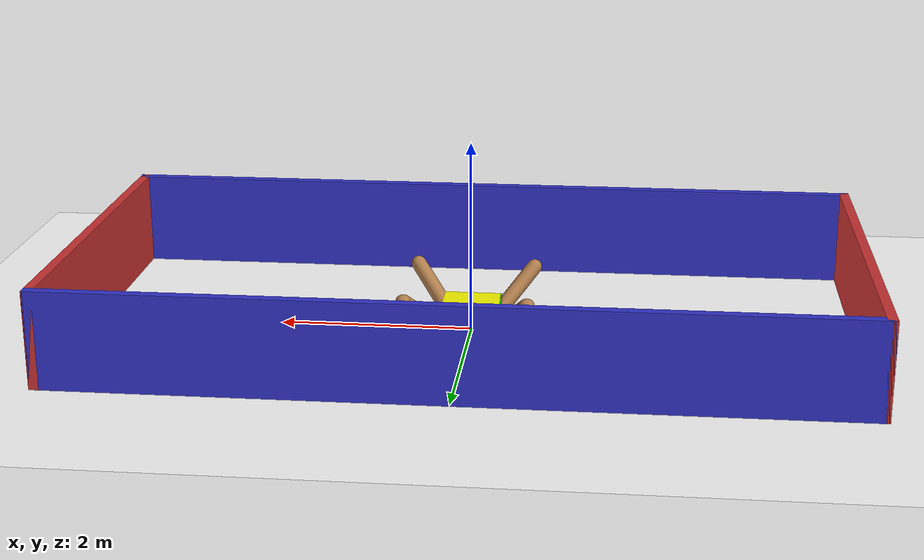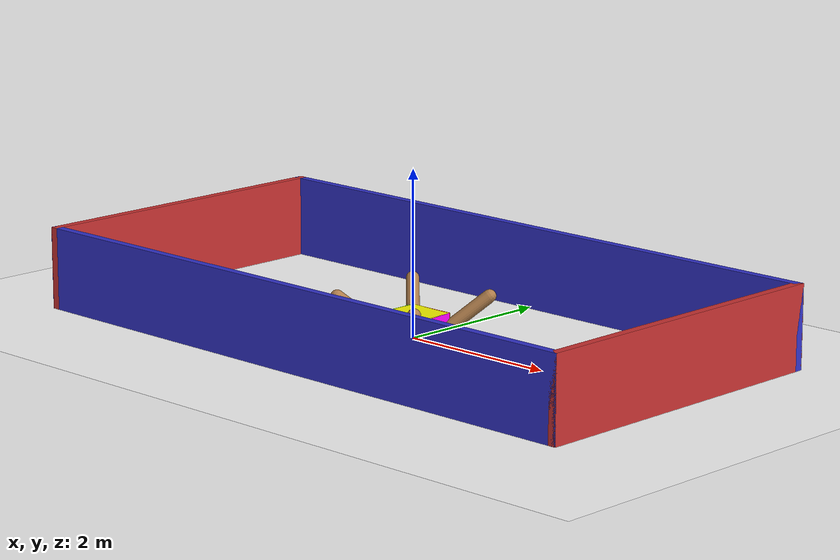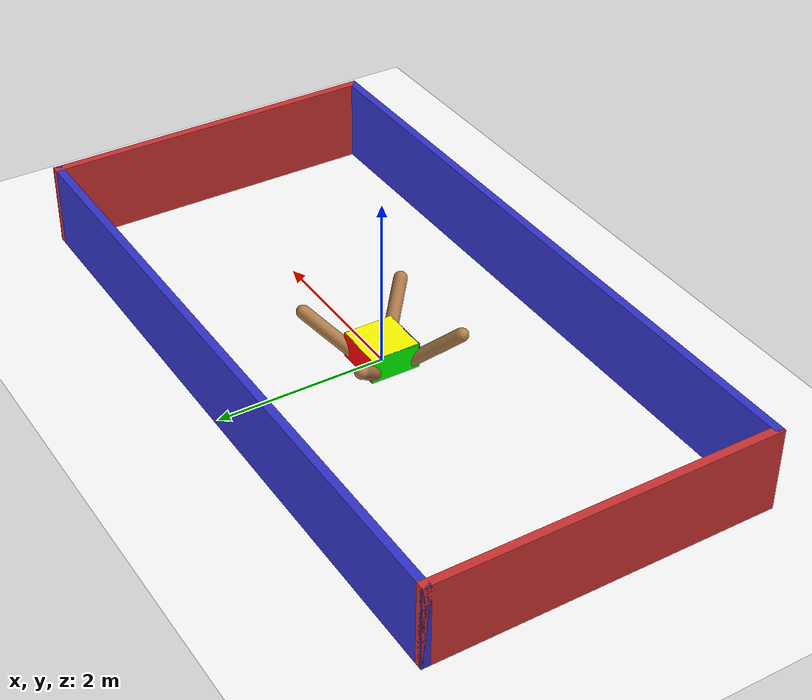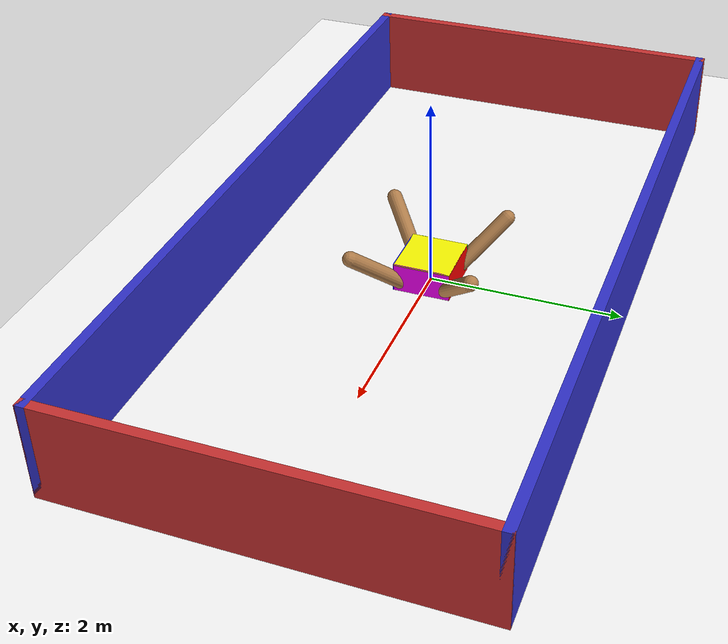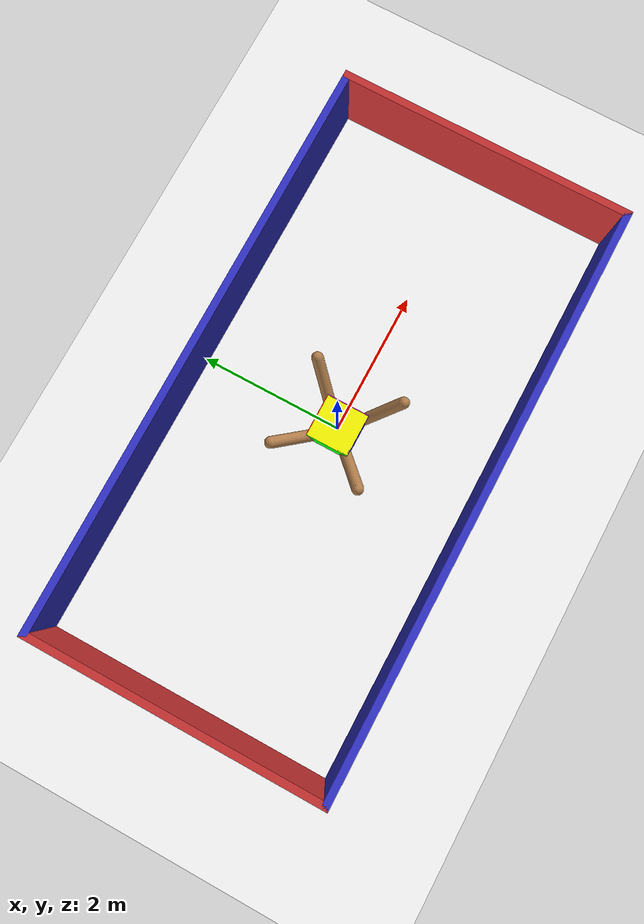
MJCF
<mujoco model="dex-gripper">
  <asset>
    <texture name="skybox" type="skybox" builtin="gradient" rgb1=".2 .3 .4" rgb2="0 0 0" width="800" height="800" mark="random" markrgb="1 1 1"/>
    <texture name="grid" type="2d" builtin="checker" rgb1=".2 .1 .2" rgb2=".3 .2 .3" width="300" height="300" mark="edge" markrgb=".3 .2 .3"/>
    <material name="grid" texture="grid" texrepeat="1 1" texuniform="true" reflectance=".2"/>
    <material name="self" rgba=".7 .5 .3 1"/>
  </asset>

  <visual>
    <headlight ambient=".4 .4 .4" diffuse=".8 .8 .8" specular="0.1 0.1 0.1"/>
    <map znear=".001"/>
    <quality shadowsize="16384"/>
  </visual>

  <compiler angle="degree" coordinate="global" inertiafromgeom="true"/>
  <option integrator="RK4" timestep="0.01"/>

  <default>
    <joint armature="1" damping="1" limited="true"/>
    <geom conaffinity="0" condim="3" density="5.0" friction="1 0.5 0.5" margin="0.01" rgba=".7 .5 .3 1"/>
  </default>

  <worldbody>
    <light cutoff="100" diffuse="1 1 1" dir="0.3 0 -1.3" directional="true" exponent="1" pos="-30 0 130" specular=".1 .1 .1"/>
    <geom conaffinity="1" condim="3" name="floor" pos="0 0 0" rgba="1 1 1 1" size="200 200 .125" type="plane" material="grid"/>

    <!-- Fixed gripper base: no root slide joints anymore -->
    <body name="0" pos="0 0 0.3" gravcomp="1">
      <camera name="track" mode="fixed" pos="0 10 5" quat="0 0 0.547 0.892"/>
      <geom name="torso" pos="0 0 0" size="0.25 0.25 0.15" type="ellipsoid"/>

      <!-- Arm 1: flipped upward -->
      <body name="1" pos="0 0 0" gravcomp="1">
        <joint axis="-0.6124 0.6124 0" name="1_joint" pos="0.177 0.177 0" range="-45 45" type="hinge" damping="0"/>
        <geom fromto="0.177 0.177 0   0.623 0.623 0.5" size="0.08" type="capsule"/>
      </body>

      <!-- Arm 2: flipped upward -->
      <body name="2" pos="0 0 0" gravcomp="1">
        <joint axis="-0.6124 -0.6124 0" name="2_joint" pos="-0.177 0.177 0" range="-45 45" type="hinge" damping="0"/>
        <geom fromto="-0.177 0.177 0   -0.623 0.623 0.5" size="0.08" type="capsule"/>
      </body>

      <!-- Arm 3: flipped upward -->
      <body name="3" pos="0 0 0" gravcomp="1">
        <joint axis="0.6124 -0.6124 0" name="3_joint" pos="-0.177 -0.177 0" range="-45 45" type="hinge" damping="0"/>
        <geom fromto="-0.177 -0.177 0   -0.623 -0.623 0.5" size="0.08" type="capsule"/>
      </body>

      <!-- Arm 4: flipped upward -->
      <body name="4" pos="0 0 0" gravcomp="1">
        <joint axis="0.6124 0.6124 0" name="4_joint" pos="0.177 -0.177 0" range="-45 45" type="hinge" damping="0"/>
        <geom fromto="0.177 -0.177 0   0.623 -0.623 0.5" size="0.08" type="capsule"/>
      </body>
    </body>

    <!-- Box starts above the gripper -->
    <body name="box" pos="0 0 0">
        <freejoint name="box_joint"/>

        <!-- Top (Yellow) -->
        <geom name="box_top"
              type="box"
              pos="0 0 0.295"
              size="0.3 0.3 0.005"
              rgba="1 1 0 1"
              density="10"
              friction="2.5 0.1 0.05"
              contype="1"
              conaffinity="1"/>

        <!-- Bottom (White) -->
        <geom name="box_bottom"
              type="box"
              pos="0 0 -0.295"
              size="0.3 0.3 0.005"
              rgba="1 1 1 1"
              density="10"
              friction="2.5 0.1 0.05"
              contype="1"
              conaffinity="1"/>

        <!-- Front (Red) -->
        <geom name="box_front"
              type="box"
              pos="0 0.295 0"
              size="0.3 0.005 0.3"
              rgba="1 0 0 1"
              density="10"
              friction="2.5 0.1 0.05"
              contype="1"
              conaffinity="1"/>

        <!-- Back (Blue) -->
        <geom name="box_back"
              type="box"
              pos="0 -0.295 0"
              size="0.3 0.005 0.3"
              rgba="0 0 1 1"
              density="10"
              friction="2.5 0.1 0.05"
              contype="1"
              conaffinity="1"/>

        <!-- Left (Green) -->
        <geom name="box_left"
              type="box"
              pos="-0.295 0 0"
              size="0.005 0.3 0.3"
              rgba="0 1 0 1"
              density="10"
              friction="2.5 0.1 0.05"
              contype="1"
              conaffinity="1"/>

        <!-- Right (Magenta) -->
        <geom name="box_right"
              type="box"
              pos="0.295 0 0"
              size="0.005 0.3 0.3"
              rgba="1 0 1 1"
              density="10"
              friction="2.5 0.1 0.05"
              contype="1"
              conaffinity="1"/>
    </body>

    <body name="box_walls" pos="0 0 0">
      <geom name="wall_left"
            type="box"
            pos="-4.0 0 0.5"
            size="0.05 2.05 0.5"
            rgba="0.8 0.2 0.2 1"
            contype="1" conaffinity="1"/>

      <geom name="wall_right"
            type="box"
            pos="4.0 0 0.5"
            size="0.05 2.05 0.5"
            rgba="0.8 0.2 0.2 1"
            contype="1" conaffinity="1"/>

      <geom name="wall_front"
            type="box"
            pos="0 2.0 0.5"
            size="4.05 0.05 0.5"
            rgba="0.2 0.2 0.8 1"
            contype="1" conaffinity="1"/>

      <geom name="wall_back"
            type="box"
            pos="0 -2.0 0.5"
            size="4.05 0.05 0.5"
            rgba="0.2 0.2 0.8 1"
            contype="1" conaffinity="1"/>
    </body>
  </worldbody>

  <actuator>
    <!-- Only the finger joints remain actuated -->
    <motor ctrllimited="true" ctrlrange="-1.0 1.0" joint="1_joint" gear="50" name="1_joint"/>
    <motor ctrllimited="true" ctrlrange="-1.0 1.0" joint="2_joint" gear="50" name="2_joint"/>
    <motor ctrllimited="true" ctrlrange="-1.0 1.0" joint="3_joint" gear="50" name="3_joint"/>
    <motor ctrllimited="true" ctrlrange="-1.0 1.0" joint="4_joint" gear="50" name="4_joint"/>
  </actuator>
</mujoco>
